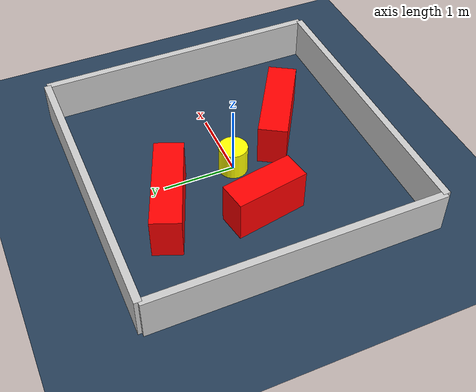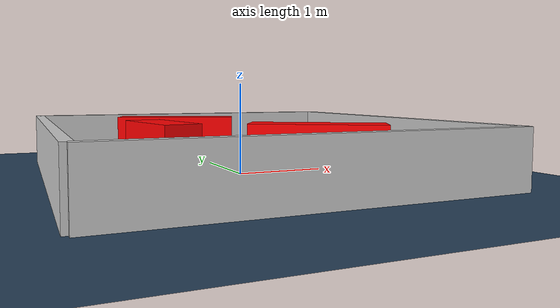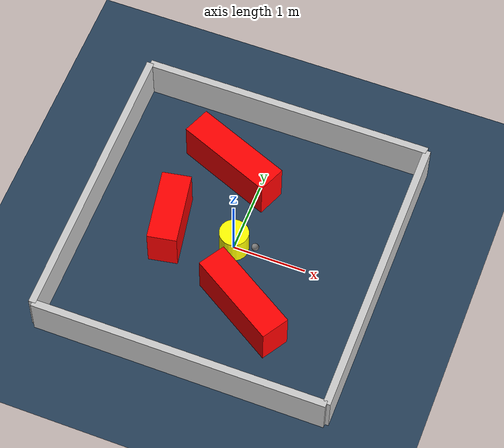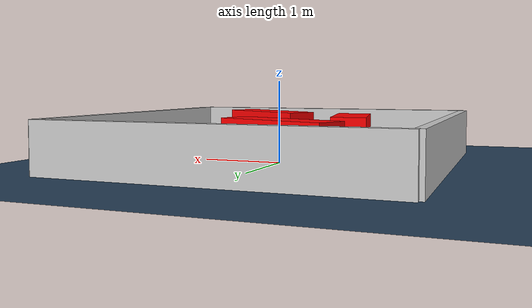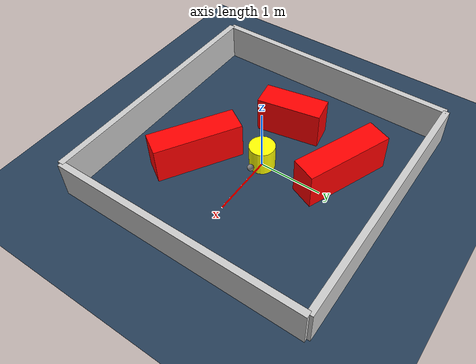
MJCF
<?xml version="1.0" ?>
<mujoco model="generated_environment">
  <option timestep="0.01" integrator="RK4" cone="elliptic"/>
  <default>
    <geom density="1"/>
  </default>
  <asset>
    <texture builtin="gradient" height="3072" rgb1="0.3 0.5 0.7" rgb2="0 0 0" type="skybox" width="512"/>
    <texture builtin="checker" height="300" mark="edge" markrgb="0.8 0.8 0.8" name="groundplane" rgb1="0.2 0.3 0.4" rgb2="0.1 0.2 0.3" type="2d" width="300"/>
    <material name="groundplane" reflectance="0.2" texrepeat="5 5" texture="groundplane" texuniform="true"/>
    <material name="robot" rgba="0.0 1.0 0.0 1"/>
  </asset>
  <worldbody>
    <light dir="0 0 -1" directional="true" pos="0 0 1.5"/>
    <geom condim="4" friction="1.0 0.005 0.001" material="groundplane" name="floor" size="0 0 0.05" type="plane"/>
    <body name="walls">
      <geom name="wall_1" condim="4" pos="-2.0 0.0 0.3" rgba="0.800000011920929 0.800000011920929 0.800000011920929 1.0" size="0.05 2.0 0.3" type="box"/>
      <geom name="wall_2" condim="4" pos="2.0 0.0 0.3" rgba="0.800000011920929 0.800000011920929 0.800000011920929 1.0" size="0.05 2.0 0.3" type="box"/>
      <geom name="wall_3" condim="4" pos="0.0 -2.0 0.3" rgba="0.800000011920929 0.800000011920929 0.800000011920929 1.0" size="2.0 0.05 0.3" type="box"/>
      <geom name="wall_4" condim="4" pos="0.0 2.0 0.3" rgba="0.800000011920929 0.800000011920929 0.800000011920929 1.0" size="2.0 0.05 0.3" type="box"/>
    </body>
    <body name="robot">
      <joint name="joint_x" type="slide" pos="0 0 0" axis="1 0 0"/>
      <joint name="joint_y" type="slide" pos="0 0 0" axis="0 1 0"/>
      <geom name="robot" type="sphere" pos="0.3 0.0 0.2" size="0.05" mass="5." friction="1.0 0.005 0.0001" condim="4" rgba="0.5 0.5 0.5 1.0"/>
      <site name="sensor_ball"/>
    </body>
    <body name="obstacle_movable_1">
      <geom name="obstacle_movable_1" condim="4" pos="0.0 0.0 0.2" euler="0 0 0.0" friction="1.0 0.005 0.001" rgba="1.0 1.0 0.0 1.0" size="0.2 0.2 0.0" type="cylinder" mass="0.1"/>
      <joint type="free"/>
    </body>
    <body name="obstacle_2_static">
      <geom name="obstacle_2_static" condim="4" pos="-0.8976058488702756 -0.04101741231895151 0.3" euler="0 0 280.32065738406214" friction="1.0 0.005 0.001" rgba="1 0 0 1" size="0.5026012578684522 0.2 0.3" type="box"/>
    </body>
    <body name="obstacle_3_static">
      <geom name="obstacle_3_static" condim="4" pos="0.46299652084250087 -0.8816562070253386 0.3" euler="0 0 328.376556884681" friction="1.0 0.005 0.001" rgba="1 0 0 1" size="0.6765322244387233 0.2 0.3" type="box"/>
    </body>
    <body name="obstacle_4_static">
      <geom name="obstacle_4_static" condim="4" pos="-0.42355078342347974 1.0857688323043513 0.3" euler="0 0 337.95162559336217" friction="1.0 0.005 0.001" rgba="1 0 0 1" size="0.6944975239527846 0.2 0.3" type="box"/>
    </body>
  </worldbody>
  <actuator>
    <motor name="actuator_x" joint="joint_x" gear="1" ctrlrange="-1 1"/>
    <motor name="actuator_y" joint="joint_y" gear="1" ctrlrange="-1 1"/>
  </actuator>
</mujoco>
